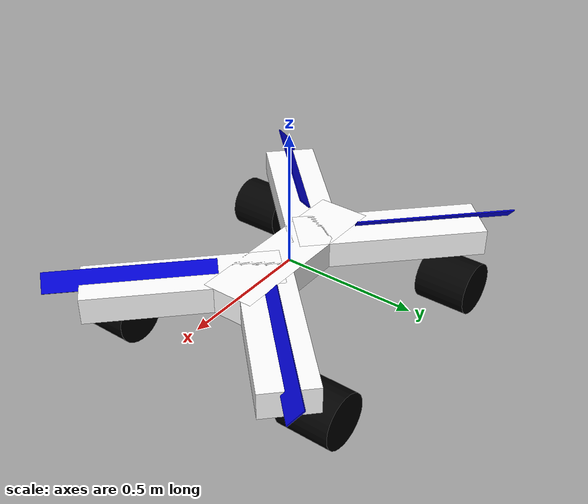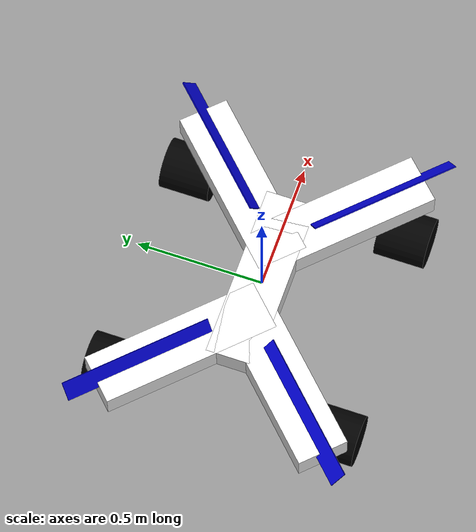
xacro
<?xml version="1.0"?>
<robot xmlns:xacro="http://www.ros.org/wiki/xacro" name="robot">
<xacro:include filename="$(find robot_description)/urdf/gazebo.urdf.xacro" />

<!-- Константы: цвета-->
<material name="blue">
    <color rgba="0 0 0.8 1"/>
  </material>
  <material name="black">
    <color rgba="0 0 0 1"/>
  </material>
  <material name="white">
    <color rgba="1 1 1 1"/>
  </material>

<!-- Константы: параметры квадрокоптера -->
<xacro:property name="base_width" value="0.2"/>
<xacro:property name="base_length" value="0.7"/>
<xacro:property name="base_high" value="0.1"/>
<xacro:property name="base_mass" value="0.05"/>

<xacro:property name="propeller_width" value="0.075"/>
<xacro:property name="propeller_length" value="0.6"/>
<xacro:property name="propeller_high" value="0.005"/>

<xacro:property name="wheel_width" value="0.2"/>
<xacro:property name="wheel_radius" value="0.1"/>

<xacro:property name="wheel_mass" value="0.02"/>
<xacro:property name="propeller_mass" value="0.001"/>

<!-- Создание объекта: Основание -->
<link name="base_link">
  <visual>
     <geometry>
        <box size="${base_length} ${base_width} ${base_high}"/>
      </geometry>
      <material name="white"/>
  </visual>
  <collision>
      <geometry>
        <box size="${base_length} ${base_width} ${base_high}"/>
      </geometry>
    </collision>
    <inertial>
      <mass value="${base_mass}"/>
      <inertia ixx="${(base_mass/12)*(base_width*base_width+base_high*base_high)}" ixy="0.0" ixz="0.0"
      		iyy="${(base_mass/12)*(base_length*base_length+base_high*base_high)}" iyz="0.0"
      		izz="${(base_mass/12)*(base_width*base_width+base_length*base_length)}"/>
    </inertial>
</link>

<!-- Реализация класса: Крыло и Крепёж крыла-->
<xacro:macro name="wing" params="prefix rpy xyz">
  <link name="wing_${prefix}">
    <visual>
        <geometry>
            <box size="${base_length} ${base_width} ${base_high}"/>
        </geometry>
        <material name="white"/>
    </visual>
    <collision>
        <geometry>
            <box size="${base_length} ${base_width} ${base_high}"/>
        </geometry>
    </collision>
    <inertial>
      <mass value="${base_mass}"/>
      <inertia ixx="${(base_mass/12)*(base_width*base_width+base_high*base_high)}" ixy="0.0" ixz="0.0"
      		iyy="${(base_mass/12)*(base_length*base_length+base_high*base_high)}" iyz="0.0"
      		izz="${(base_mass/12)*(base_width*base_width+base_length*base_length)}"/>
    </inertial>
  </link>
  <joint name="wing_${prefix}_joint" type="fixed">
    <parent link="base_link"/>
    <child link="wing_${prefix}"/>
    <origin xyz="${xyz}" rpy="${rpy}"/>
  </joint>
</xacro:macro>

<!-- Реализация класса: Пропеллер и Крепёж пропеллера-->
<xacro:macro name="propeller" params="prefix rpy xyz">

  <link name="propeller_${prefix}">
    <visual>
        <origin rpy="${rpy}"/>
        <geometry>
            <box size="${propeller_length} ${propeller_width} ${propeller_high}"/>
        </geometry>
        <material name="blue"/>
    </visual>
    <collision>
        <origin rpy="${rpy}"/>
        <geometry>
            <box size="${propeller_length} ${propeller_width} ${propeller_high}"/>
        </geometry>
    </collision>
    <inertial>
      <mass value="${propeller_mass}"/>
      <inertia ixx="${(propeller_mass/12)*(propeller_width*propeller_width+propeller_high*propeller_high)}" ixy="0.0" ixz="0.0"
      		    iyy="${(propeller_mass/12)*(propeller_length*propeller_length+propeller_high*propeller_high)}" iyz="0.0"
      		    izz="${(propeller_mass/12)*(propeller_width*propeller_width+propeller_length*propeller_length)}"/>
    </inertial>
  </link>
  <joint name="propeller_${prefix}_joint" type="continuous">
    <parent link="wing_${prefix}"/>
    <child link="propeller_${prefix}"/>
    <origin xyz="${xyz}"/>
    <axis xyz="0 0 1"/>
  </joint>
</xacro:macro>

<!-- Реализация класса: Колесо -->

<xacro:macro name="wheel" params="prefix reflect reflect2">
  <link name="wheel_${prefix}">
    <visual>
      <geometry>
        <cylinder length="${wheel_width}" radius="${wheel_radius}"/>
      </geometry>
      <material name="black"/>
    </visual>
    <collision>
      <geometry>
        <sphere radius="${wheel_radius}"/>
      </geometry>
    </collision>
    <inertial>
      <mass value="${wheel_mass}" />
      <inertia ixx="${(1/12) * wheel_mass * (3*wheel_radius*wheel_radius + wheel_width*wheel_width)}" ixy="0.0" ixz="0.0"
                iyy="${(1/12) * wheel_mass * (3*wheel_radius*wheel_radius + wheel_width*wheel_width)}" iyz="0.0"
                izz="${(1/2) * wheel_mass * (wheel_radius*wheel_radius)}" />
    </inertial>
  </link>
  <joint name="wheel_${prefix}_joint" type="continuous">
    <parent link="base_link"/>
    <child link="wheel_${prefix}"/>
    <axis xyz="0 0 ${reflect2}"/>
    <origin xyz="${reflect * (base_length/2 + 0.12*base_length)} ${reflect2 * (base_width * 2 + 0.2*base_width)} ${-1.5*base_high}"
    rpy="${-reflect2 * pi/2} 0 0"/>
  </joint>

</xacro:macro>

<!-- Создание объектов и их свойств: Крыло -->
<xacro:wing prefix="forward_right" rpy="0 0 ${7*pi/4}" xyz="${-base_length/2} ${base_width} 0"/>
<xacro:wing prefix="forward_left" rpy="0 0 ${5*pi/4}" xyz="${-base_length/2} ${-base_width} 0"/>
<xacro:wing prefix="backward_right" rpy="0 0 ${1*pi/4}" xyz="${base_length/2} ${base_width} 0"/>
<xacro:wing prefix="backward_left" rpy="0 0 ${3*pi/4}" xyz="${base_length/2} ${-base_width} 0"/>

<!-- Создание объектов и их свойств: Пропеллер  -->
<xacro:propeller prefix="forward_right" rpy="${1*pi/4} 0 0" xyz="${-base_length/4} 0 ${base_high/2 + 0.01}"/>
<xacro:propeller prefix="forward_left" rpy="${1*pi/4} 0 0" xyz="${base_length/4} 0 ${base_high/2 + 0.01}"/>
<xacro:propeller prefix="backward_right" rpy="${1*pi/4} 0 0" xyz="${base_length/4} 0 ${base_high/2 + 0.01}"/>
<xacro:propeller prefix="backward_left" rpy="${1*pi/4} 0 0" xyz="${-base_length/4} 0 ${base_high/2 + 0.01}"/>

<!-- Создание объектов и их свойств: Колесо  -->
<xacro:wheel prefix="forward_right" reflect="1" reflect2="-1"/>
<xacro:wheel prefix="backward_right" reflect="-1" reflect2="-1"/>
<xacro:wheel prefix="forward_left" reflect="1" reflect2="1"/>
<xacro:wheel prefix="backward_left" reflect="-1" reflect2="1"/>

</robot>
